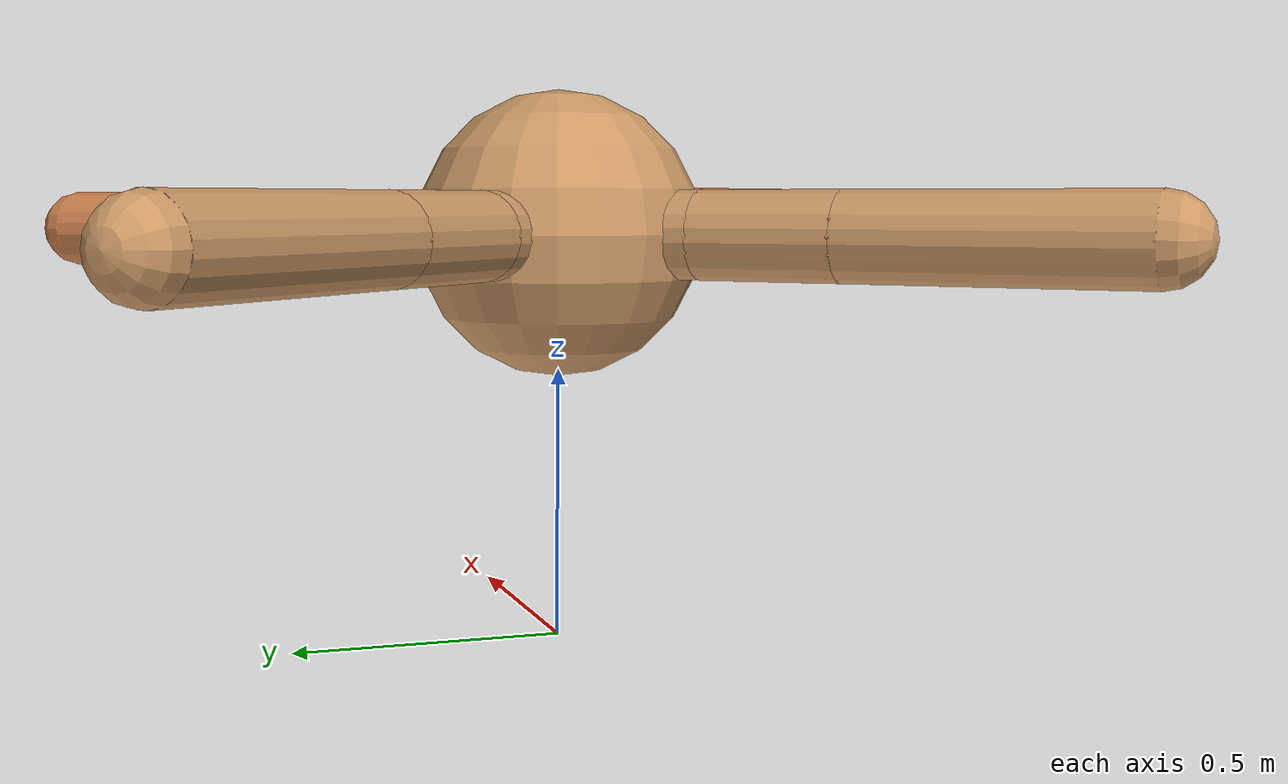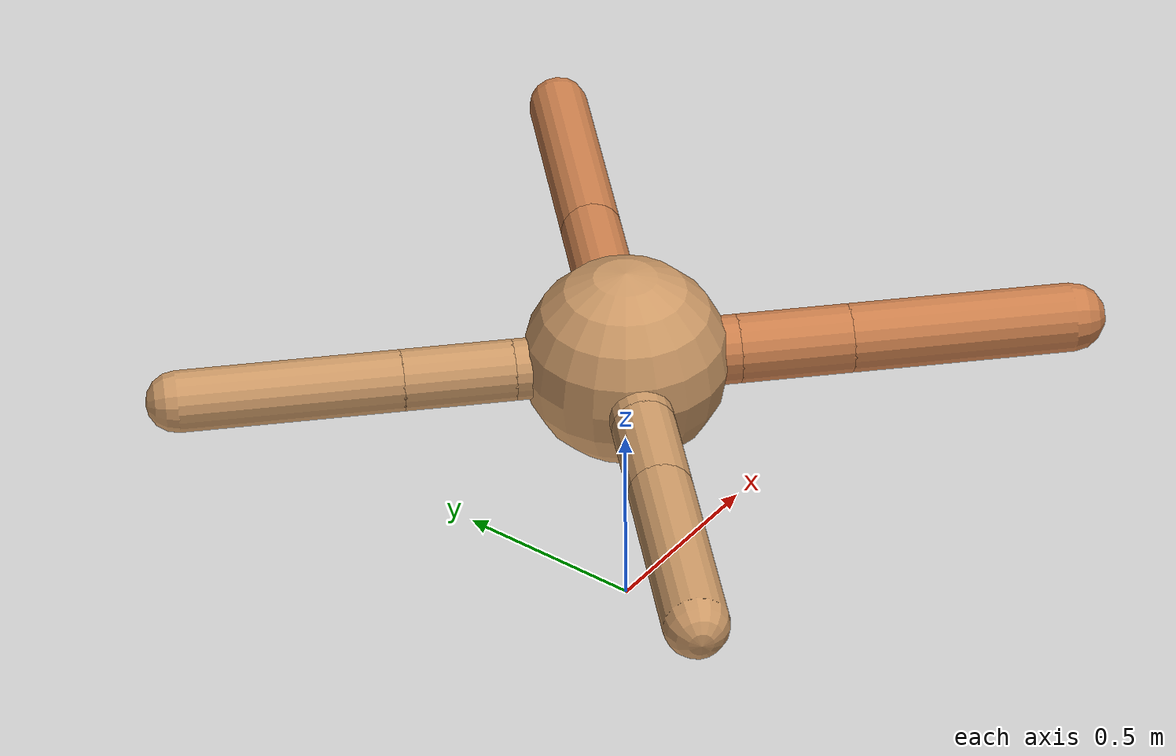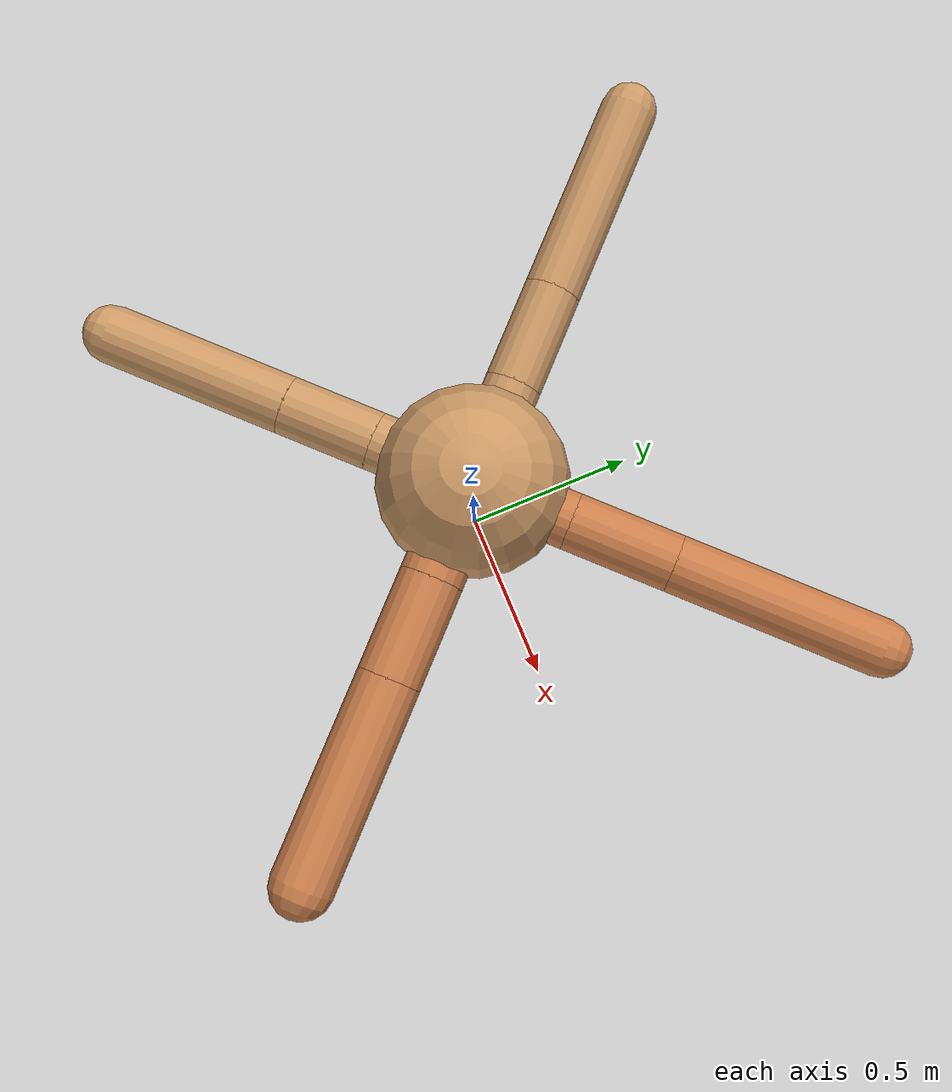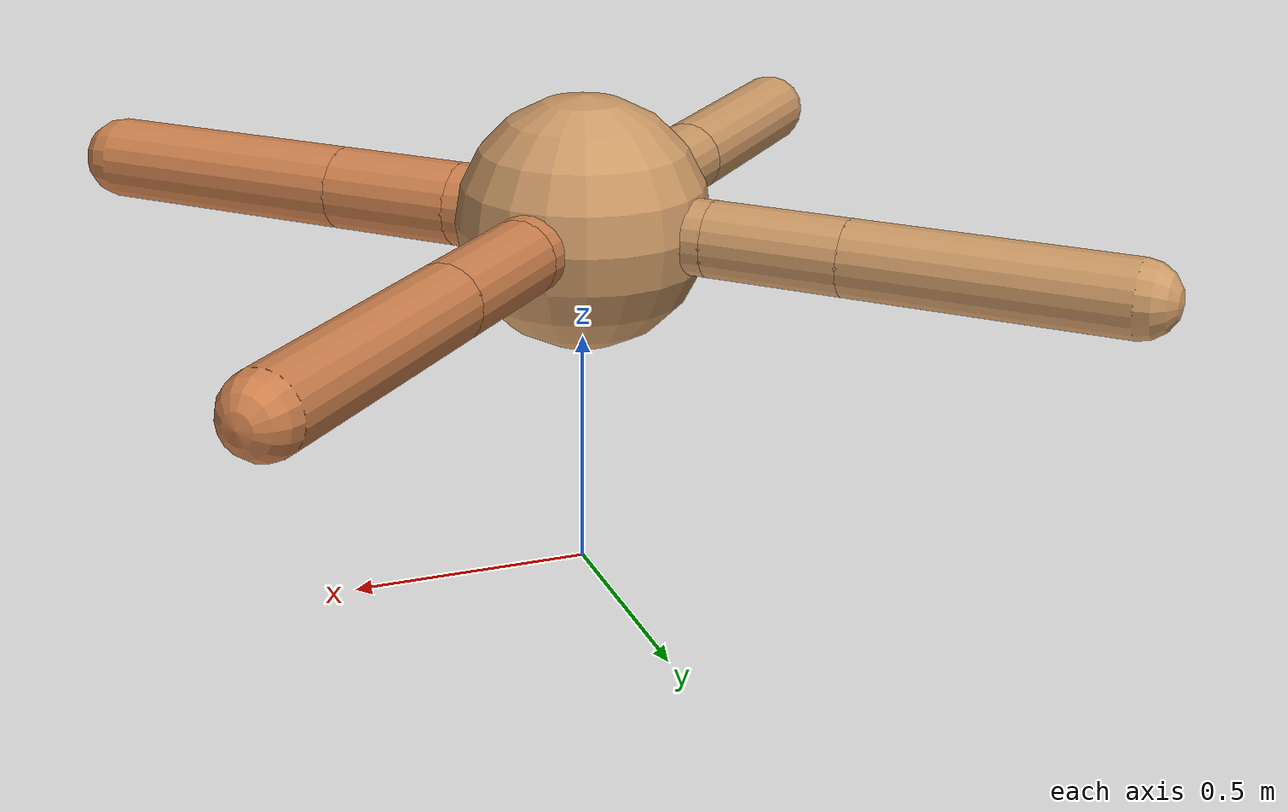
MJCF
<?xml version="1.0" ?>
<mujoco model="ant">

	<compiler angle="degree" coordinate="local" inertiafromgeom="true"/>

	<option integrator="RK4" timestep="0.01"/>

	<custom>

		<numeric data="0.0 0.0 0.55 1.0 0.0 0.0 0.0 0.0 1.0 0.0 -1.0 0.0 -1.0 0.0 1.0" name="init_qpos"/>

	</custom>

	<default>

		<joint armature="1" damping="1" limited="true"/>

		<geom conaffinity="0" condim="3" density="5.0" friction="1.5 0.1 0.1" margin="0.01" rgba="0.8 0.6 0.4 1"/>

	</default>

	<worldbody>

		<body name="torso" pos="0 0 0.75">

			<geom name="torso_geom" pos="0 0 0" size="0.26148134930881317" type="sphere"/>

			<!--joint armature="0" damping="0" limited="false" margin="0.01" name="root" pos="0 0 0" type="free"/-->

			<body name="front_left_leg" pos="0 0 0">

				<geom fromto="0 0 0 0.2 0.2 0" name="aux_1_geom" size="0.07876395380772229" type="capsule" rgba=".8 .5 .3 1"/>

				<body name="aux_1" pos="0.2 0.2 0">

					<joint axis="0 0 1" name="hip_1" pos="0.0 0.0 0.0" range="-40 40" type="hinge"/>

					<geom fromto="0 0 0 0.2066152661461088 0.2066152661461088 0" name="left_leg_geom" size="0.07876395380772229" type="capsule" rgba=".8 .5 .3 1"/>

					<body pos="0.2066152661461088 0.2066152661461088 0" name="front_left_foot">

						<joint axis="-1 1 0" name="ankle_1" pos="0.0 0.0 0.0" range="30 100" type="hinge"/>

						<geom fromto="0 0 0 0.4132305322922176 0.4132305322922176 0" name="left_ankle_geom" size="0.07876395380772229" type="capsule" rgba=".8 .5 .3 1"/>

					</body>

				</body>

			</body>

			<body name="front_right_leg" pos="0 0 0">

				<geom fromto="0 0 0 -0.2 0.2 0" name="aux_2_geom" size="0.07796068980112911" type="capsule"/>

				<body name="aux_2" pos="-0.2 0.2 0">

					<joint axis="0 0 1" name="hip_2" pos="0.0 0.0 0.0" range="-40 40" type="hinge"/>

					<geom fromto="0 0 0 -0.19789634686585036 0.19789634686585036 0" name="right_leg_geom" size="0.07796068980112911" type="capsule"/>

					<body pos="-0.19789634686585036 0.19789634686585036 0" name="front_right_foot">

						<joint axis="1 1 0" name="ankle_2" pos="0.0 0.0 0.0" range="-100 -30" type="hinge"/>

						<geom fromto="0 0 0 -0.39579269373170073 0.39579269373170073 0" name="right_ankle_geom" size="0.07796068980112911" type="capsule"/>

					</body>

				</body>

			</body>

			<body name="left_back_leg" pos="0 0 0">

				<geom fromto="0 0 0 -0.2 -0.2 0" name="aux_3_geom" size="0.08038276894618006" type="capsule"/>

				<body name="aux_3" pos="-0.2 -0.2 0">

					<joint axis="0 0 1" name="hip_3" pos="0.0 0.0 0.0" range="-40 40" type="hinge"/>

					<geom fromto="0 0 0 -0.18125194425363828 -0.18125194425363828 0" name="back_leg_geom" size="0.08038276894618006" type="capsule"/>

					<body pos="-0.18125194425363828 -0.18125194425363828 0" name="left_back_foot">

						<joint axis="-1 1 0" name="ankle_3" pos="0.0 0.0 0.0" range="-100 -30" type="hinge"/>

						<geom fromto="0 0 0 -0.36250388850727655 -0.36250388850727655 0" name="third_ankle_geom" size="0.08038276894618006" type="capsule"/>

					</body>

				</body>

			</body>

			<body name="right_back_leg" pos="0 0 0">

				<geom fromto="0 0 0 0.2 -0.2 0" name="aux_4_geom" size="0.08795777865354161" type="capsule" rgba=".8 .5 .3 1"/>

				<body name="aux_4" pos="0.2 -0.2 0">

					<joint axis="0 0 1" name="hip_4" pos="0.0 0.0 0.0" range="-40 40" type="hinge"/>

					<geom fromto="0 0 0 0.2019302602884417 -0.2019302602884417 0" name="rightback_leg_geom" size="0.08795777865354161" type="capsule" rgba=".8 .5 .3 1"/>

					<body pos="0.2019302602884417 -0.2019302602884417 0" name="right_back_foot">

						<joint axis="1 1 0" name="ankle_4" pos="0.0 0.0 0.0" range="30 100" type="hinge"/>

						<geom fromto="0 0 0 0.4038605205768834 -0.4038605205768834 0" name="fourth_ankle_geom" size="0.08795777865354161" type="capsule" rgba=".8 .5 .3 1"/>

					</body>

				</body>

			</body>

		</body>

	</worldbody>

	<actuator>

		<motor ctrllimited="true" ctrlrange="-1.0 1.0" joint="hip_4" gear="150"/>

		<motor ctrllimited="true" ctrlrange="-1.0 1.0" joint="ankle_4" gear="150"/>

		<motor ctrllimited="true" ctrlrange="-1.0 1.0" joint="hip_1" gear="150"/>

		<motor ctrllimited="true" ctrlrange="-1.0 1.0" joint="ankle_1" gear="150"/>

		<motor ctrllimited="true" ctrlrange="-1.0 1.0" joint="hip_2" gear="150"/>

		<motor ctrllimited="true" ctrlrange="-1.0 1.0" joint="ankle_2" gear="150"/>

		<motor ctrllimited="true" ctrlrange="-1.0 1.0" joint="hip_3" gear="150"/>

		<motor ctrllimited="true" ctrlrange="-1.0 1.0" joint="ankle_3" gear="150"/>

	</actuator>

</mujoco>
